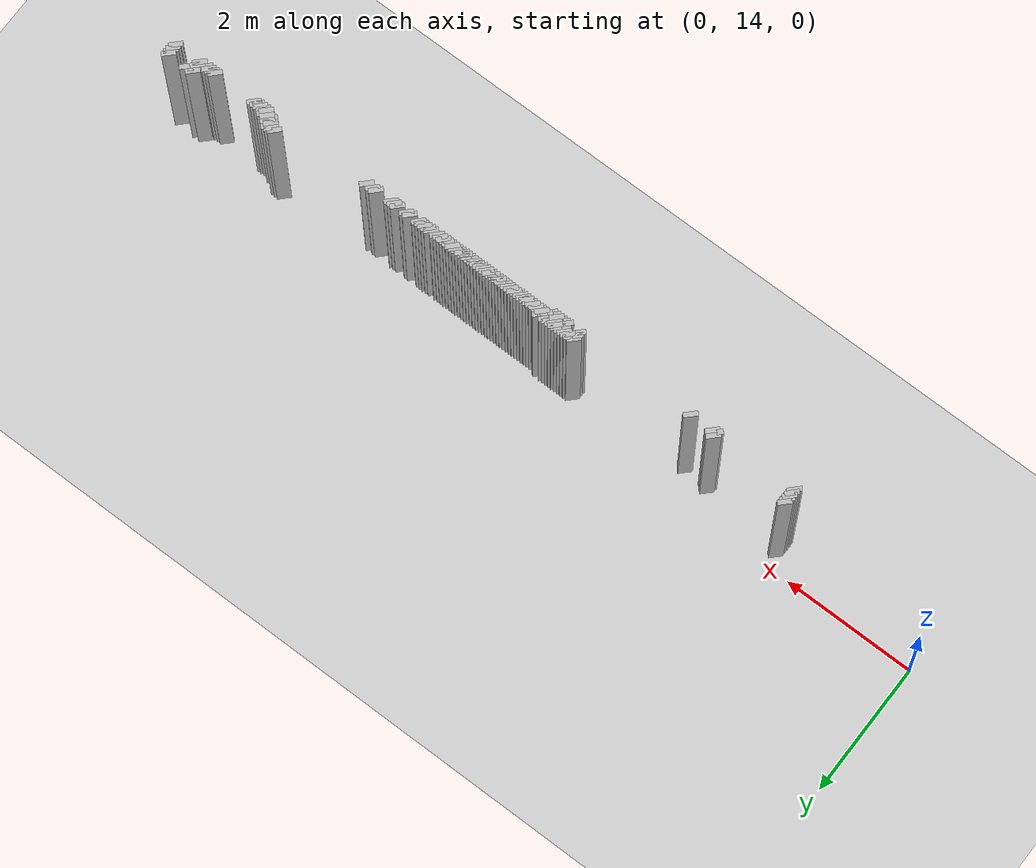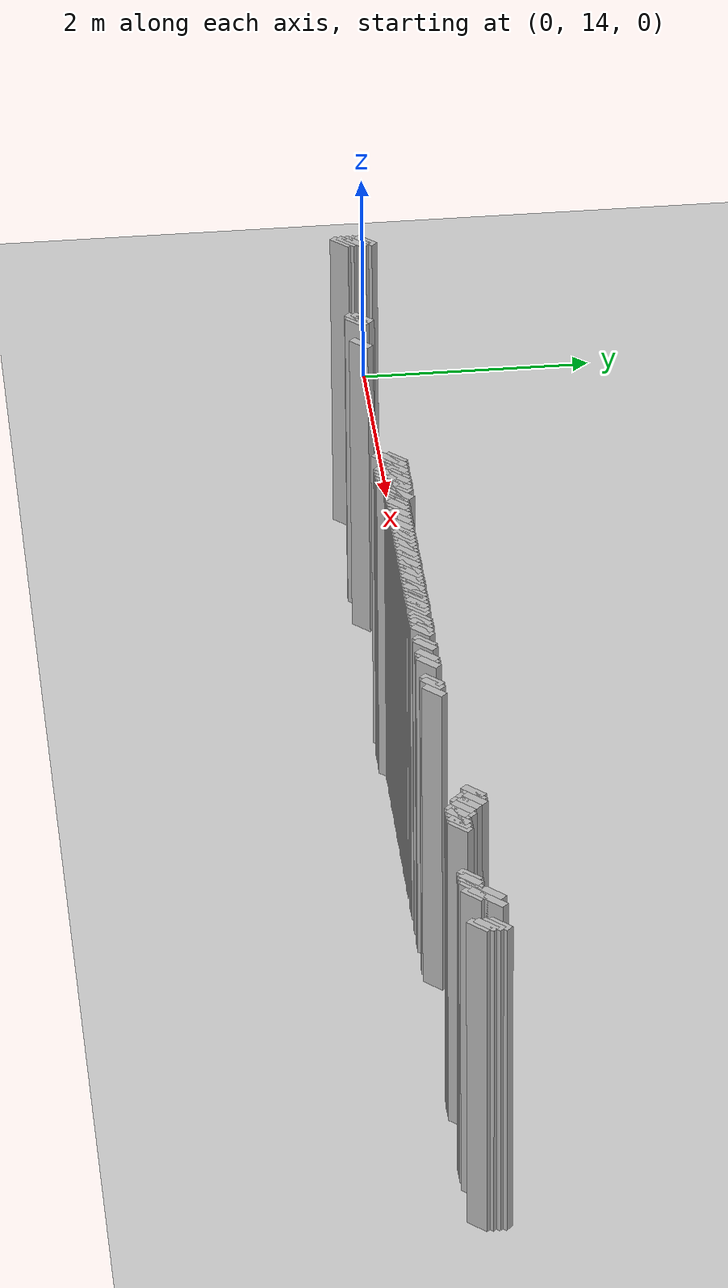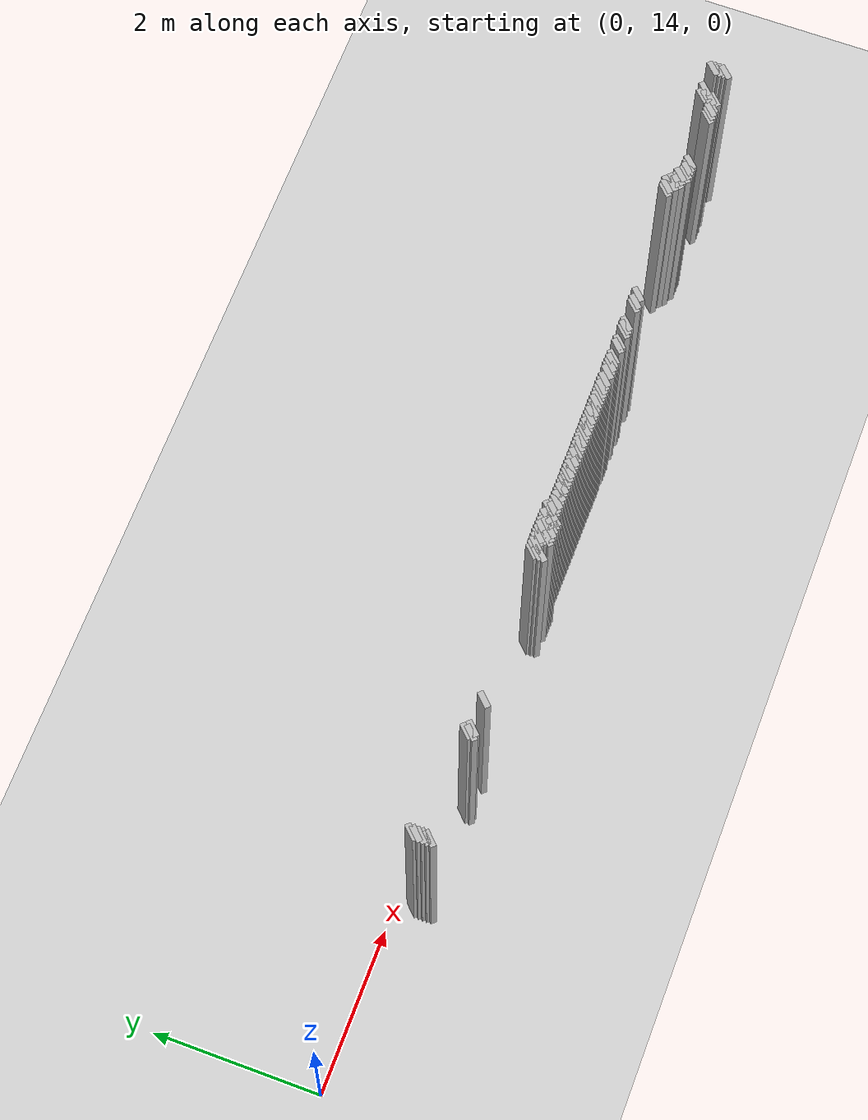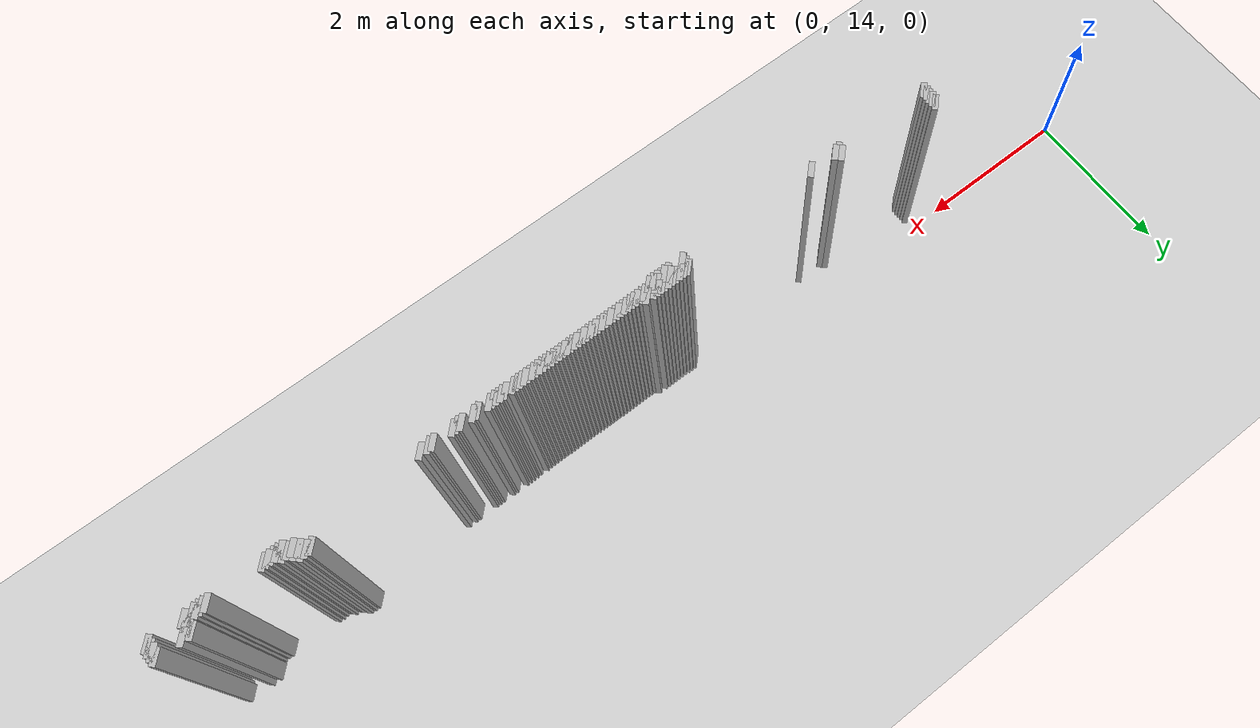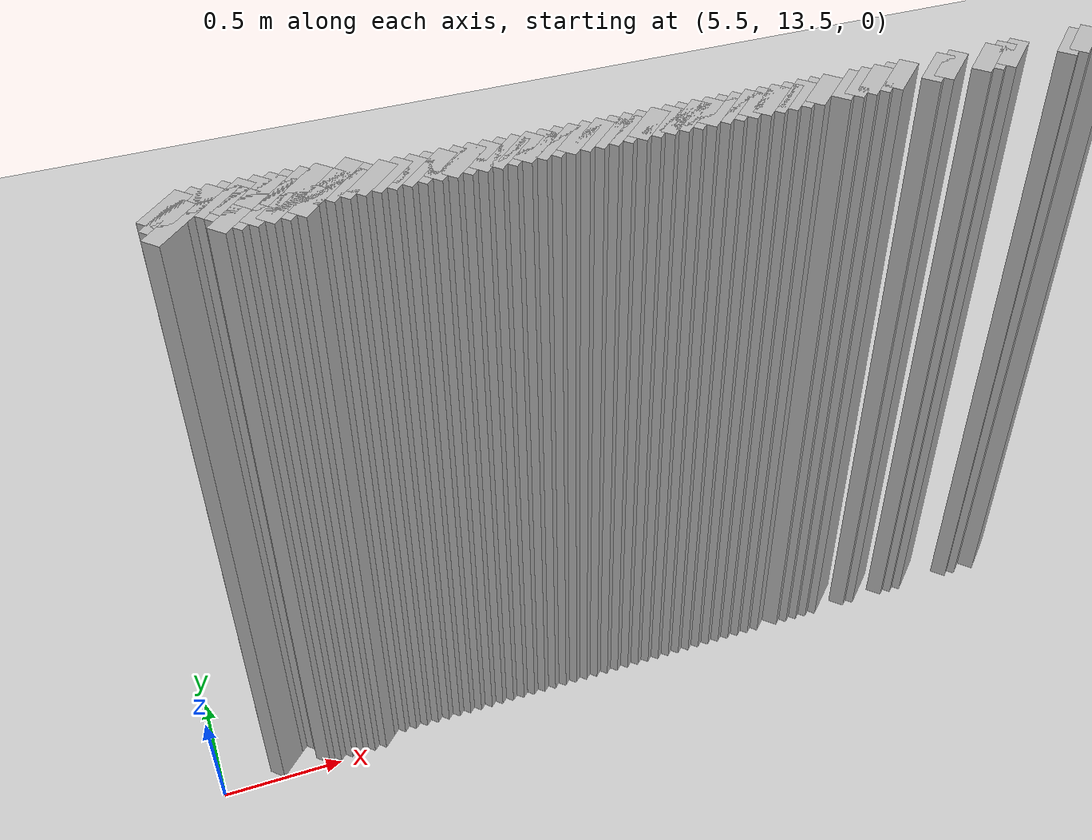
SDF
<sdf version="1.5">
 <world name="default">
  <include><uri>model://ground_plane</uri></include>
  <include><uri>model://sun</uri></include>
  <model name="grey_wall_636">
   <static>1</static>
   <link name="link">
    <pose>2.35 13.8  1.4 0 0 -0.7853981633974572</pose>
    <collision name="collision">
     <geometry><box><size>0.07071067811865513 .2  2.8</size></box></geometry>
    </collision>
    <visual name="visual">
     <cast_shadows>0</cast_shadows>
     <geometry><box><size>0.07071067811865513 .2  2.8</size></box></geometry>
    </visual>
   </link>
  </model>
  <model name="grey_wall_637">
   <static>1</static>
   <link name="link">
    <pose>10.600000000000001 13.8  1.4 0 0 -0.7853981633974483</pose>
    <collision name="collision">
     <geometry><box><size>0.07071067811865576 .2  2.8</size></box></geometry>
    </collision>
    <visual name="visual">
     <cast_shadows>0</cast_shadows>
     <geometry><box><size>0.07071067811865576 .2  2.8</size></box></geometry>
    </visual>
   </link>
  </model>
  <model name="grey_wall_638">
   <static>1</static>
   <link name="link">
    <pose>10.65 13.8  1.4 0 0 -0.7853981633974483</pose>
    <collision name="collision">
     <geometry><box><size>0.07071067811865576 .2  2.8</size></box></geometry>
    </collision>
    <visual name="visual">
     <cast_shadows>0</cast_shadows>
     <geometry><box><size>0.07071067811865576 .2  2.8</size></box></geometry>
    </visual>
   </link>
  </model>
  <model name="grey_wall_639">
   <static>1</static>
   <link name="link">
    <pose>10.700000000000001 13.8  1.4 0 0 -0.7853981633974483</pose>
    <collision name="collision">
     <geometry><box><size>0.07071067811865576 .2  2.8</size></box></geometry>
    </collision>
    <visual name="visual">
     <cast_shadows>0</cast_shadows>
     <geometry><box><size>0.07071067811865576 .2  2.8</size></box></geometry>
    </visual>
   </link>
  </model>
  <model name="grey_wall_640">
   <static>1</static>
   <link name="link">
    <pose>11.950000000000001 13.8  1.4 0 0 -0.7853981633974483</pose>
    <collision name="collision">
     <geometry><box><size>0.07071067811865576 .2  2.8</size></box></geometry>
    </collision>
    <visual name="visual">
     <cast_shadows>0</cast_shadows>
     <geometry><box><size>0.07071067811865576 .2  2.8</size></box></geometry>
    </visual>
   </link>
  </model>
  <model name="grey_wall_641">
   <static>1</static>
   <link name="link">
    <pose>12.05 13.8  1.4 0 0 -0.7853981633974483</pose>
    <collision name="collision">
     <geometry><box><size>0.07071067811865576 .2  2.8</size></box></geometry>
    </collision>
    <visual name="visual">
     <cast_shadows>0</cast_shadows>
     <geometry><box><size>0.07071067811865576 .2  2.8</size></box></geometry>
    </visual>
   </link>
  </model>
  <model name="grey_wall_642">
   <static>1</static>
   <link name="link">
    <pose>12.350000000000001 13.8  1.4 0 0 -0.7853981633974483</pose>
    <collision name="collision">
     <geometry><box><size>0.07071067811865576 .2  2.8</size></box></geometry>
    </collision>
    <visual name="visual">
     <cast_shadows>0</cast_shadows>
     <geometry><box><size>0.07071067811865576 .2  2.8</size></box></geometry>
    </visual>
   </link>
  </model>
  <model name="grey_wall_643">
   <static>1</static>
   <link name="link">
    <pose>2.35 13.75  1.4 0 0 -0.7853981633974572</pose>
    <collision name="collision">
     <geometry><box><size>0.07071067811865513 .2  2.8</size></box></geometry>
    </collision>
    <visual name="visual">
     <cast_shadows>0</cast_shadows>
     <geometry><box><size>0.07071067811865513 .2  2.8</size></box></geometry>
    </visual>
   </link>
  </model>
  <model name="grey_wall_644">
   <static>1</static>
   <link name="link">
    <pose>10.700000000000001 13.75  1.4 0 0 -0.7853981633974483</pose>
    <collision name="collision">
     <geometry><box><size>0.07071067811865576 .2  2.8</size></box></geometry>
    </collision>
    <visual name="visual">
     <cast_shadows>0</cast_shadows>
     <geometry><box><size>0.07071067811865576 .2  2.8</size></box></geometry>
    </visual>
   </link>
  </model>
  <model name="grey_wall_645">
   <static>1</static>
   <link name="link">
    <pose>10.75 13.75  1.4 0 0 -0.7853981633974483</pose>
    <collision name="collision">
     <geometry><box><size>0.07071067811865576 .2  2.8</size></box></geometry>
    </collision>
    <visual name="visual">
     <cast_shadows>0</cast_shadows>
     <geometry><box><size>0.07071067811865576 .2  2.8</size></box></geometry>
    </visual>
   </link>
  </model>
  <model name="grey_wall_646">
   <static>1</static>
   <link name="link">
    <pose>11.950000000000001 13.75  1.4 0 0 -0.7853981633974483</pose>
    <collision name="collision">
     <geometry><box><size>0.07071067811865576 .2  2.8</size></box></geometry>
    </collision>
    <visual name="visual">
     <cast_shadows>0</cast_shadows>
     <geometry><box><size>0.07071067811865576 .2  2.8</size></box></geometry>
    </visual>
   </link>
  </model>
  <model name="grey_wall_647">
   <static>1</static>
   <link name="link">
    <pose>12.350000000000001 13.75  1.4 0 0 -0.7853981633974483</pose>
    <collision name="collision">
     <geometry><box><size>0.07071067811865576 .2  2.8</size></box></geometry>
    </collision>
    <visual name="visual">
     <cast_shadows>0</cast_shadows>
     <geometry><box><size>0.07071067811865576 .2  2.8</size></box></geometry>
    </visual>
   </link>
  </model>
  <model name="grey_wall_648">
   <static>1</static>
   <link name="link">
    <pose>2.35 13.700000000000001  1.4 0 0 -0.7853981633974572</pose>
    <collision name="collision">
     <geometry><box><size>0.07071067811865513 .2  2.8</size></box></geometry>
    </collision>
    <visual name="visual">
     <cast_shadows>0</cast_shadows>
     <geometry><box><size>0.07071067811865513 .2  2.8</size></box></geometry>
    </visual>
   </link>
  </model>
  <model name="grey_wall_649">
   <static>1</static>
   <link name="link">
    <pose>5.800000000000001 13.700000000000001  1.4 0 0 -0.7853981633974483</pose>
    <collision name="collision">
     <geometry><box><size>0.07071067811865576 .2  2.8</size></box></geometry>
    </collision>
    <visual name="visual">
     <cast_shadows>0</cast_shadows>
     <geometry><box><size>0.07071067811865576 .2  2.8</size></box></geometry>
    </visual>
   </link>
  </model>
  <model name="grey_wall_650">
   <static>1</static>
   <link name="link">
    <pose>5.8500000000000005 13.700000000000001  1.4 0 0 -0.7853981633974483</pose>
    <collision name="collision">
     <geometry><box><size>0.07071067811865576 .2  2.8</size></box></geometry>
    </collision>
    <visual name="visual">
     <cast_shadows>0</cast_shadows>
     <geometry><box><size>0.07071067811865576 .2  2.8</size></box></geometry>
    </visual>
   </link>
  </model>
  <model name="grey_wall_651">
   <static>1</static>
   <link name="link">
    <pose>5.9 13.700000000000001  1.4 0 0 -0.7853981633974483</pose>
    <collision name="collision">
     <geometry><box><size>0.07071067811865576 .2  2.8</size></box></geometry>
    </collision>
    <visual name="visual">
     <cast_shadows>0</cast_shadows>
     <geometry><box><size>0.07071067811865576 .2  2.8</size></box></geometry>
    </visual>
   </link>
  </model>
  <model name="grey_wall_652">
   <static>1</static>
   <link name="link">
    <pose>5.95 13.700000000000001  1.4 0 0 -0.7853981633974483</pose>
    <collision name="collision">
     <geometry><box><size>0.07071067811865576 .2  2.8</size></box></geometry>
    </collision>
    <visual name="visual">
     <cast_shadows>0</cast_shadows>
     <geometry><box><size>0.07071067811865576 .2  2.8</size></box></geometry>
    </visual>
   </link>
  </model>
  <model name="grey_wall_653">
   <static>1</static>
   <link name="link">
    <pose>6.0 13.700000000000001  1.4 0 0 -0.7853981633974483</pose>
    <collision name="collision">
     <geometry><box><size>0.07071067811865576 .2  2.8</size></box></geometry>
    </collision>
    <visual name="visual">
     <cast_shadows>0</cast_shadows>
     <geometry><box><size>0.07071067811865576 .2  2.8</size></box></geometry>
    </visual>
   </link>
  </model>
  <model name="grey_wall_654">
   <static>1</static>
   <link name="link">
    <pose>6.050000000000001 13.700000000000001  1.4 0 0 -0.7853981633974483</pose>
    <collision name="collision">
     <geometry><box><size>0.07071067811865576 .2  2.8</size></box></geometry>
    </collision>
    <visual name="visual">
     <cast_shadows>0</cast_shadows>
     <geometry><box><size>0.07071067811865576 .2  2.8</size></box></geometry>
    </visual>
   </link>
  </model>
  <model name="grey_wall_655">
   <static>1</static>
   <link name="link">
    <pose>6.1000000000000005 13.700000000000001  1.4 0 0 -0.7853981633974483</pose>
    <collision name="collision">
     <geometry><box><size>0.07071067811865576 .2  2.8</size></box></geometry>
    </collision>
    <visual name="visual">
     <cast_shadows>0</cast_shadows>
     <geometry><box><size>0.07071067811865576 .2  2.8</size></box></geometry>
    </visual>
   </link>
  </model>
  <model name="grey_wall_656">
   <static>1</static>
   <link name="link">
    <pose>6.15 13.700000000000001  1.4 0 0 -0.7853981633974483</pose>
    <collision name="collision">
     <geometry><box><size>0.07071067811865576 .2  2.8</size></box></geometry>
    </collision>
    <visual name="visual">
     <cast_shadows>0</cast_shadows>
     <geometry><box><size>0.07071067811865576 .2  2.8</size></box></geometry>
    </visual>
   </link>
  </model>
  <model name="grey_wall_657">
   <static>1</static>
   <link name="link">
    <pose>6.2 13.700000000000001  1.4 0 0 -0.7853981633974483</pose>
    <collision name="collision">
     <geometry><box><size>0.07071067811865576 .2  2.8</size></box></geometry>
    </collision>
    <visual name="visual">
     <cast_shadows>0</cast_shadows>
     <geometry><box><size>0.07071067811865576 .2  2.8</size></box></geometry>
    </visual>
   </link>
  </model>
  <model name="grey_wall_658">
   <static>1</static>
   <link name="link">
    <pose>6.25 13.700000000000001  1.4 0 0 -0.7853981633974483</pose>
    <collision name="collision">
     <geometry><box><size>0.07071067811865576 .2  2.8</size></box></geometry>
    </collision>
    <visual name="visual">
     <cast_shadows>0</cast_shadows>
     <geometry><box><size>0.07071067811865576 .2  2.8</size></box></geometry>
    </visual>
   </link>
  </model>
  <model name="grey_wall_659">
   <static>1</static>
   <link name="link">
    <pose>6.3500000000000005 13.700000000000001  1.4 0 0 -0.7853981633974483</pose>
    <collision name="collision">
     <geometry><box><size>0.07071067811865576 .2  2.8</size></box></geometry>
    </collision>
    <visual name="visual">
     <cast_shadows>0</cast_shadows>
     <geometry><box><size>0.07071067811865576 .2  2.8</size></box></geometry>
    </visual>
   </link>
  </model>
  <model name="grey_wall_660">
   <static>1</static>
   <link name="link">
    <pose>10.75 13.700000000000001  1.4 0 0 -0.7853981633974483</pose>
    <collision name="collision">
     <geometry><box><size>0.07071067811865576 .2  2.8</size></box></geometry>
    </collision>
    <visual name="visual">
     <cast_shadows>0</cast_shadows>
     <geometry><box><size>0.07071067811865576 .2  2.8</size></box></geometry>
    </visual>
   </link>
  </model>
  <model name="grey_wall_661">
   <static>1</static>
   <link name="link">
    <pose>10.8 13.700000000000001  1.4 0 0 -0.7853981633974483</pose>
    <collision name="collision">
     <geometry><box><size>0.07071067811865576 .2  2.8</size></box></geometry>
    </collision>
    <visual name="visual">
     <cast_shadows>0</cast_shadows>
     <geometry><box><size>0.07071067811865576 .2  2.8</size></box></geometry>
    </visual>
   </link>
  </model>
  <model name="grey_wall_662">
   <static>1</static>
   <link name="link">
    <pose>10.850000000000001 13.700000000000001  1.4 0 0 -0.7853981633974483</pose>
    <collision name="collision">
     <geometry><box><size>0.07071067811865576 .2  2.8</size></box></geometry>
    </collision>
    <visual name="visual">
     <cast_shadows>0</cast_shadows>
     <geometry><box><size>0.07071067811865576 .2  2.8</size></box></geometry>
    </visual>
   </link>
  </model>
  <model name="grey_wall_663">
   <static>1</static>
   <link name="link">
    <pose>11.950000000000001 13.700000000000001  1.4 0 0 -0.7853981633974483</pose>
    <collision name="collision">
     <geometry><box><size>0.07071067811865576 .2  2.8</size></box></geometry>
    </collision>
    <visual name="visual">
     <cast_shadows>0</cast_shadows>
     <geometry><box><size>0.07071067811865576 .2  2.8</size></box></geometry>
    </visual>
   </link>
  </model>
  <model name="grey_wall_664">
   <static>1</static>
   <link name="link">
    <pose>12.350000000000001 13.700000000000001  1.4 0 0 -0.7853981633974483</pose>
    <collision name="collision">
     <geometry><box><size>0.07071067811865576 .2  2.8</size></box></geometry>
    </collision>
    <visual name="visual">
     <cast_shadows>0</cast_shadows>
     <geometry><box><size>0.07071067811865576 .2  2.8</size></box></geometry>
    </visual>
   </link>
  </model>
  <model name="grey_wall_665">
   <static>1</static>
   <link name="link">
    <pose>2.35 13.65  1.4 0 0 -0.7853981633974572</pose>
    <collision name="collision">
     <geometry><box><size>0.07071067811865513 .2  2.8</size></box></geometry>
    </collision>
    <visual name="visual">
     <cast_shadows>0</cast_shadows>
     <geometry><box><size>0.07071067811865513 .2  2.8</size></box></geometry>
    </visual>
   </link>
  </model>
  <model name="grey_wall_666">
   <static>1</static>
   <link name="link">
    <pose>3.6 13.65  1.4 0 0 -0.7853981633974572</pose>
    <collision name="collision">
     <geometry><box><size>0.07071067811865513 .2  2.8</size></box></geometry>
    </collision>
    <visual name="visual">
     <cast_shadows>0</cast_shadows>
     <geometry><box><size>0.07071067811865513 .2  2.8</size></box></geometry>
    </visual>
   </link>
  </model>
  <model name="grey_wall_667">
   <static>1</static>
   <link name="link">
    <pose>5.800000000000001 13.65  1.4 0 0 -0.7853981633974483</pose>
    <collision name="collision">
     <geometry><box><size>0.07071067811865576 .2  2.8</size></box></geometry>
    </collision>
    <visual name="visual">
     <cast_shadows>0</cast_shadows>
     <geometry><box><size>0.07071067811865576 .2  2.8</size></box></geometry>
    </visual>
   </link>
  </model>
  <model name="grey_wall_668">
   <static>1</static>
   <link name="link">
    <pose>6.0 13.65  1.4 0 0 -0.7853981633974483</pose>
    <collision name="collision">
     <geometry><box><size>0.07071067811865576 .2  2.8</size></box></geometry>
    </collision>
    <visual name="visual">
     <cast_shadows>0</cast_shadows>
     <geometry><box><size>0.07071067811865576 .2  2.8</size></box></geometry>
    </visual>
   </link>
  </model>
  <model name="grey_wall_669">
   <static>1</static>
   <link name="link">
    <pose>6.15 13.65  1.4 0 0 -0.7853981633974483</pose>
    <collision name="collision">
     <geometry><box><size>0.07071067811865576 .2  2.8</size></box></geometry>
    </collision>
    <visual name="visual">
     <cast_shadows>0</cast_shadows>
     <geometry><box><size>0.07071067811865576 .2  2.8</size></box></geometry>
    </visual>
   </link>
  </model>
  <model name="grey_wall_670">
   <static>1</static>
   <link name="link">
    <pose>6.2 13.65  1.4 0 0 -0.7853981633974483</pose>
    <collision name="collision">
     <geometry><box><size>0.07071067811865576 .2  2.8</size></box></geometry>
    </collision>
    <visual name="visual">
     <cast_shadows>0</cast_shadows>
     <geometry><box><size>0.07071067811865576 .2  2.8</size></box></geometry>
    </visual>
   </link>
  </model>
  <model name="grey_wall_671">
   <static>1</static>
   <link name="link">
    <pose>6.300000000000001 13.65  1.4 0 0 -0.7853981633974483</pose>
    <collision name="collision">
     <geometry><box><size>0.07071067811865576 .2  2.8</size></box></geometry>
    </collision>
    <visual name="visual">
     <cast_shadows>0</cast_shadows>
     <geometry><box><size>0.07071067811865576 .2  2.8</size></box></geometry>
    </visual>
   </link>
  </model>
  <model name="grey_wall_672">
   <static>1</static>
   <link name="link">
    <pose>6.3500000000000005 13.65  1.4 0 0 -0.7853981633974483</pose>
    <collision name="collision">
     <geometry><box><size>0.07071067811865576 .2  2.8</size></box></geometry>
    </collision>
    <visual name="visual">
     <cast_shadows>0</cast_shadows>
     <geometry><box><size>0.07071067811865576 .2  2.8</size></box></geometry>
    </visual>
   </link>
  </model>
  <model name="grey_wall_673">
   <static>1</static>
   <link name="link">
    <pose>6.4 13.65  1.4 0 0 -0.7853981633974483</pose>
    <collision name="collision">
     <geometry><box><size>0.07071067811865576 .2  2.8</size></box></geometry>
    </collision>
    <visual name="visual">
     <cast_shadows>0</cast_shadows>
     <geometry><box><size>0.07071067811865576 .2  2.8</size></box></geometry>
    </visual>
   </link>
  </model>
  <model name="grey_wall_674">
   <static>1</static>
   <link name="link">
    <pose>6.45 13.65  1.4 0 0 -0.7853981633974483</pose>
    <collision name="collision">
     <geometry><box><size>0.07071067811865576 .2  2.8</size></box></geometry>
    </collision>
    <visual name="visual">
     <cast_shadows>0</cast_shadows>
     <geometry><box><size>0.07071067811865576 .2  2.8</size></box></geometry>
    </visual>
   </link>
  </model>
  <model name="grey_wall_675">
   <static>1</static>
   <link name="link">
    <pose>6.5 13.65  1.4 0 0 -0.7853981633974483</pose>
    <collision name="collision">
     <geometry><box><size>0.07071067811865576 .2  2.8</size></box></geometry>
    </collision>
    <visual name="visual">
     <cast_shadows>0</cast_shadows>
     <geometry><box><size>0.07071067811865576 .2  2.8</size></box></geometry>
    </visual>
   </link>
  </model>
  <model name="grey_wall_676">
   <static>1</static>
   <link name="link">
    <pose>6.550000000000001 13.65  1.4 0 0 -0.7853981633974483</pose>
    <collision name="collision">
     <geometry><box><size>0.07071067811865576 .2  2.8</size></box></geometry>
    </collision>
    <visual name="visual">
     <cast_shadows>0</cast_shadows>
     <geometry><box><size>0.07071067811865576 .2  2.8</size></box></geometry>
    </visual>
   </link>
  </model>
  <model name="grey_wall_677">
   <static>1</static>
   <link name="link">
    <pose>6.6000000000000005 13.65  1.4 0 0 -0.7853981633974483</pose>
    <collision name="collision">
     <geometry><box><size>0.07071067811865576 .2  2.8</size></box></geometry>
    </collision>
    <visual name="visual">
     <cast_shadows>0</cast_shadows>
     <geometry><box><size>0.07071067811865576 .2  2.8</size></box></geometry>
    </visual>
   </link>
  </model>
  <model name="grey_wall_678">
   <static>1</static>
   <link name="link">
    <pose>6.65 13.65  1.4 0 0 -0.7853981633974483</pose>
    <collision name="collision">
     <geometry><box><size>0.07071067811865576 .2  2.8</size></box></geometry>
    </collision>
    <visual name="visual">
     <cast_shadows>0</cast_shadows>
     <geometry><box><size>0.07071067811865576 .2  2.8</size></box></geometry>
    </visual>
   </link>
  </model>
  <model name="grey_wall_679">
   <static>1</static>
   <link name="link">
    <pose>6.7 13.65  1.4 0 0 -0.7853981633974483</pose>
    <collision name="collision">
     <geometry><box><size>0.07071067811865576 .2  2.8</size></box></geometry>
    </collision>
    <visual name="visual">
     <cast_shadows>0</cast_shadows>
     <geometry><box><size>0.07071067811865576 .2  2.8</size></box></geometry>
    </visual>
   </link>
  </model>
  <model name="grey_wall_680">
   <static>1</static>
   <link name="link">
    <pose>6.75 13.65  1.4 0 0 -0.7853981633974483</pose>
    <collision name="collision">
     <geometry><box><size>0.07071067811865576 .2  2.8</size></box></geometry>
    </collision>
    <visual name="visual">
     <cast_shadows>0</cast_shadows>
     <geometry><box><size>0.07071067811865576 .2  2.8</size></box></geometry>
    </visual>
   </link>
  </model>
  <model name="grey_wall_681">
   <static>1</static>
   <link name="link">
    <pose>6.800000000000001 13.65  1.4 0 0 -0.7853981633974483</pose>
    <collision name="collision">
     <geometry><box><size>0.07071067811865576 .2  2.8</size></box></geometry>
    </collision>
    <visual name="visual">
     <cast_shadows>0</cast_shadows>
     <geometry><box><size>0.07071067811865576 .2  2.8</size></box></geometry>
    </visual>
   </link>
  </model>
  <model name="grey_wall_682">
   <static>1</static>
   <link name="link">
    <pose>6.8500000000000005 13.65  1.4 0 0 -0.7853981633974483</pose>
    <collision name="collision">
     <geometry><box><size>0.07071067811865576 .2  2.8</size></box></geometry>
    </collision>
    <visual name="visual">
     <cast_shadows>0</cast_shadows>
     <geometry><box><size>0.07071067811865576 .2  2.8</size></box></geometry>
    </visual>
   </link>
  </model>
  <model name="grey_wall_683">
   <static>1</static>
   <link name="link">
    <pose>6.9 13.65  1.4 0 0 -0.7853981633974483</pose>
    <collision name="collision">
     <geometry><box><size>0.07071067811865576 .2  2.8</size></box></geometry>
    </collision>
    <visual name="visual">
     <cast_shadows>0</cast_shadows>
     <geometry><box><size>0.07071067811865576 .2  2.8</size></box></geometry>
    </visual>
   </link>
  </model>
  <model name="grey_wall_684">
   <static>1</static>
   <link name="link">
    <pose>6.95 13.65  1.4 0 0 -0.7853981633974483</pose>
    <collision name="collision">
     <geometry><box><size>0.07071067811865576 .2  2.8</size></box></geometry>
    </collision>
    <visual name="visual">
     <cast_shadows>0</cast_shadows>
     <geometry><box><size>0.07071067811865576 .2  2.8</size></box></geometry>
    </visual>
   </link>
  </model>
  <model name="grey_wall_685">
   <static>1</static>
   <link name="link">
    <pose>7.0 13.65  1.4 0 0 -0.7853981633974483</pose>
    <collision name="collision">
     <geometry><box><size>0.07071067811865576 .2  2.8</size></box></geometry>
    </collision>
    <visual name="visual">
     <cast_shadows>0</cast_shadows>
     <geometry><box><size>0.07071067811865576 .2  2.8</size></box></geometry>
    </visual>
   </link>
  </model>
  <model name="grey_wall_686">
   <static>1</static>
   <link name="link">
    <pose>7.050000000000001 13.65  1.4 0 0 -0.7853981633974483</pose>
    <collision name="collision">
     <geometry><box><size>0.07071067811865576 .2  2.8</size></box></geometry>
    </collision>
    <visual name="visual">
     <cast_shadows>0</cast_shadows>
     <geometry><box><size>0.07071067811865576 .2  2.8</size></box></geometry>
    </visual>
   </link>
  </model>
  <model name="grey_wall_687">
   <static>1</static>
   <link name="link">
    <pose>7.1000000000000005 13.65  1.4 0 0 -0.7853981633974483</pose>
    <collision name="collision">
     <geometry><box><size>0.07071067811865576 .2  2.8</size></box></geometry>
    </collision>
    <visual name="visual">
     <cast_shadows>0</cast_shadows>
     <geometry><box><size>0.07071067811865576 .2  2.8</size></box></geometry>
    </visual>
   </link>
  </model>
  <model name="grey_wall_688">
   <static>1</static>
   <link name="link">
    <pose>7.15 13.65  1.4 0 0 -0.7853981633974483</pose>
    <collision name="collision">
     <geometry><box><size>0.07071067811865576 .2  2.8</size></box></geometry>
    </collision>
    <visual name="visual">
     <cast_shadows>0</cast_shadows>
     <geometry><box><size>0.07071067811865576 .2  2.8</size></box></geometry>
    </visual>
   </link>
  </model>
  <model name="grey_wall_689">
   <static>1</static>
   <link name="link">
    <pose>7.2 13.65  1.4 0 0 -0.7853981633974483</pose>
    <collision name="collision">
     <geometry><box><size>0.07071067811865576 .2  2.8</size></box></geometry>
    </collision>
    <visual name="visual">
     <cast_shadows>0</cast_shadows>
     <geometry><box><size>0.07071067811865576 .2  2.8</size></box></geometry>
    </visual>
   </link>
  </model>
  <model name="grey_wall_690">
   <static>1</static>
   <link name="link">
    <pose>7.25 13.65  1.4 0 0 -0.7853981633974483</pose>
    <collision name="collision">
     <geometry><box><size>0.07071067811865576 .2  2.8</size></box></geometry>
    </collision>
    <visual name="visual">
     <cast_shadows>0</cast_shadows>
     <geometry><box><size>0.07071067811865576 .2  2.8</size></box></geometry>
    </visual>
   </link>
  </model>
  <model name="grey_wall_691">
   <static>1</static>
   <link name="link">
    <pose>7.300000000000001 13.65  1.4 0 0 -0.7853981633974483</pose>
    <collision name="collision">
     <geometry><box><size>0.07071067811865576 .2  2.8</size></box></geometry>
    </collision>
    <visual name="visual">
     <cast_shadows>0</cast_shadows>
     <geometry><box><size>0.07071067811865576 .2  2.8</size></box></geometry>
    </visual>
   </link>
  </model>
  <model name="grey_wall_692">
   <static>1</static>
   <link name="link">
    <pose>7.3500000000000005 13.65  1.4 0 0 -0.7853981633974483</pose>
    <collision name="collision">
     <geometry><box><size>0.07071067811865576 .2  2.8</size></box></geometry>
    </collision>
    <visual name="visual">
     <cast_shadows>0</cast_shadows>
     <geometry><box><size>0.07071067811865576 .2  2.8</size></box></geometry>
    </visual>
   </link>
  </model>
  <model name="grey_wall_693">
   <static>1</static>
   <link name="link">
    <pose>7.4 13.65  1.4 0 0 -0.7853981633974483</pose>
    <collision name="collision">
     <geometry><box><size>0.07071067811865576 .2  2.8</size></box></geometry>
    </collision>
    <visual name="visual">
     <cast_shadows>0</cast_shadows>
     <geometry><box><size>0.07071067811865576 .2  2.8</size></box></geometry>
    </visual>
   </link>
  </model>
  <model name="grey_wall_694">
   <static>1</static>
   <link name="link">
    <pose>7.45 13.65  1.4 0 0 -0.7853981633974483</pose>
    <collision name="collision">
     <geometry><box><size>0.07071067811865576 .2  2.8</size></box></geometry>
    </collision>
    <visual name="visual">
     <cast_shadows>0</cast_shadows>
     <geometry><box><size>0.07071067811865576 .2  2.8</size></box></geometry>
    </visual>
   </link>
  </model>
  <model name="grey_wall_695">
   <static>1</static>
   <link name="link">
    <pose>7.5 13.65  1.4 0 0 -0.7853981633974483</pose>
    <collision name="collision">
     <geometry><box><size>0.07071067811865576 .2  2.8</size></box></geometry>
    </collision>
    <visual name="visual">
     <cast_shadows>0</cast_shadows>
     <geometry><box><size>0.07071067811865576 .2  2.8</size></box></geometry>
    </visual>
   </link>
  </model>
  <model name="grey_wall_696">
   <static>1</static>
   <link name="link">
    <pose>7.550000000000001 13.65  1.4 0 0 -0.7853981633974483</pose>
    <collision name="collision">
     <geometry><box><size>0.07071067811865576 .2  2.8</size></box></geometry>
    </collision>
    <visual name="visual">
     <cast_shadows>0</cast_shadows>
     <geometry><box><size>0.07071067811865576 .2  2.8</size></box></geometry>
    </visual>
   </link>
  </model>
  <model name="grey_wall_697">
   <static>1</static>
   <link name="link">
    <pose>7.6000000000000005 13.65  1.4 0 0 -0.7853981633974483</pose>
    <collision name="collision">
     <geometry><box><size>0.07071067811865576 .2  2.8</size></box></geometry>
    </collision>
    <visual name="visual">
     <cast_shadows>0</cast_shadows>
     <geometry><box><size>0.07071067811865576 .2  2.8</size></box></geometry>
    </visual>
   </link>
  </model>
  <model name="grey_wall_698">
   <static>1</static>
   <link name="link">
    <pose>7.65 13.65  1.4 0 0 -0.7853981633974483</pose>
    <collision name="collision">
     <geometry><box><size>0.07071067811865576 .2  2.8</size></box></geometry>
    </collision>
    <visual name="visual">
     <cast_shadows>0</cast_shadows>
     <geometry><box><size>0.07071067811865576 .2  2.8</size></box></geometry>
    </visual>
   </link>
  </model>
  <model name="grey_wall_699">
   <static>1</static>
   <link name="link">
    <pose>7.7 13.65  1.4 0 0 -0.7853981633974483</pose>
    <collision name="collision">
     <geometry><box><size>0.07071067811865576 .2  2.8</size></box></geometry>
    </collision>
    <visual name="visual">
     <cast_shadows>0</cast_shadows>
     <geometry><box><size>0.07071067811865576 .2  2.8</size></box></geometry>
    </visual>
   </link>
  </model>
  <model name="grey_wall_700">
   <static>1</static>
   <link name="link">
    <pose>7.75 13.65  1.4 0 0 -0.7853981633974483</pose>
    <collision name="collision">
     <geometry><box><size>0.07071067811865576 .2  2.8</size></box></geometry>
    </collision>
    <visual name="visual">
     <cast_shadows>0</cast_shadows>
     <geometry><box><size>0.07071067811865576 .2  2.8</size></box></geometry>
    </visual>
   </link>
  </model>
  <model name="grey_wall_701">
   <static>1</static>
   <link name="link">
    <pose>7.800000000000001 13.65  1.4 0 0 -0.7853981633974483</pose>
    <collision name="collision">
     <geometry><box><size>0.07071067811865576 .2  2.8</size></box></geometry>
    </collision>
    <visual name="visual">
     <cast_shadows>0</cast_shadows>
     <geometry><box><size>0.07071067811865576 .2  2.8</size></box></geometry>
    </visual>
   </link>
  </model>
  <model name="grey_wall_702">
   <static>1</static>
   <link name="link">
    <pose>7.8500000000000005 13.65  1.4 0 0 -0.7853981633974483</pose>
    <collision name="collision">
     <geometry><box><size>0.07071067811865576 .2  2.8</size></box></geometry>
    </collision>
    <visual name="visual">
     <cast_shadows>0</cast_shadows>
     <geometry><box><size>0.07071067811865576 .2  2.8</size></box></geometry>
    </visual>
   </link>
  </model>
  <model name="grey_wall_703">
   <static>1</static>
   <link name="link">
    <pose>7.9 13.65  1.4 0 0 -0.7853981633974483</pose>
    <collision name="collision">
     <geometry><box><size>0.07071067811865576 .2  2.8</size></box></geometry>
    </collision>
    <visual name="visual">
     <cast_shadows>0</cast_shadows>
     <geometry><box><size>0.07071067811865576 .2  2.8</size></box></geometry>
    </visual>
   </link>
  </model>
  <model name="grey_wall_704">
   <static>1</static>
   <link name="link">
    <pose>7.95 13.65  1.4 0 0 -0.7853981633974483</pose>
    <collision name="collision">
     <geometry><box><size>0.07071067811865576 .2  2.8</size></box></geometry>
    </collision>
    <visual name="visual">
     <cast_shadows>0</cast_shadows>
     <geometry><box><size>0.07071067811865576 .2  2.8</size></box></geometry>
    </visual>
   </link>
  </model>
  <model name="grey_wall_705">
   <static>1</static>
   <link name="link">
    <pose>8.0 13.65  1.4 0 0 -0.7853981633974483</pose>
    <collision name="collision">
     <geometry><box><size>0.07071067811865576 .2  2.8</size></box></geometry>
    </collision>
    <visual name="visual">
     <cast_shadows>0</cast_shadows>
     <geometry><box><size>0.07071067811865576 .2  2.8</size></box></geometry>
    </visual>
   </link>
  </model>
  <model name="grey_wall_706">
   <static>1</static>
   <link name="link">
    <pose>8.05 13.65  1.4 0 0 -0.7853981633974483</pose>
    <collision name="collision">
     <geometry><box><size>0.07071067811865576 .2  2.8</size></box></geometry>
    </collision>
    <visual name="visual">
     <cast_shadows>0</cast_shadows>
     <geometry><box><size>0.07071067811865576 .2  2.8</size></box></geometry>
    </visual>
   </link>
  </model>
  <model name="grey_wall_707">
   <static>1</static>
   <link name="link">
    <pose>8.15 13.65  1.4 0 0 -0.7853981633974483</pose>
    <collision name="collision">
     <geometry><box><size>0.07071067811865576 .2  2.8</size></box></geometry>
    </collision>
    <visual name="visual">
     <cast_shadows>0</cast_shadows>
     <geometry><box><size>0.07071067811865576 .2  2.8</size></box></geometry>
    </visual>
   </link>
  </model>
  <model name="grey_wall_708">
   <static>1</static>
   <link name="link">
    <pose>8.200000000000001 13.65  1.4 0 0 -0.7853981633974483</pose>
    <collision name="collision">
     <geometry><box><size>0.07071067811865576 .2  2.8</size></box></geometry>
    </collision>
    <visual name="visual">
     <cast_shadows>0</cast_shadows>
     <geometry><box><size>0.07071067811865576 .2  2.8</size></box></geometry>
    </visual>
   </link>
  </model>
  <model name="grey_wall_709">
   <static>1</static>
   <link name="link">
    <pose>8.25 13.65  1.4 0 0 -0.7853981633974483</pose>
    <collision name="collision">
     <geometry><box><size>0.07071067811865576 .2  2.8</size></box></geometry>
    </collision>
    <visual name="visual">
     <cast_shadows>0</cast_shadows>
     <geometry><box><size>0.07071067811865576 .2  2.8</size></box></geometry>
    </visual>
   </link>
  </model>
  <model name="grey_wall_710">
   <static>1</static>
   <link name="link">
    <pose>8.3 13.65  1.4 0 0 -0.7853981633974483</pose>
    <collision name="collision">
     <geometry><box><size>0.07071067811865576 .2  2.8</size></box></geometry>
    </collision>
    <visual name="visual">
     <cast_shadows>0</cast_shadows>
     <geometry><box><size>0.07071067811865576 .2  2.8</size></box></geometry>
    </visual>
   </link>
  </model>
  <model name="grey_wall_711">
   <static>1</static>
   <link name="link">
    <pose>8.35 13.65  1.4 0 0 -0.7853981633974483</pose>
    <collision name="collision">
     <geometry><box><size>0.07071067811865576 .2  2.8</size></box></geometry>
    </collision>
    <visual name="visual">
     <cast_shadows>0</cast_shadows>
     <geometry><box><size>0.07071067811865576 .2  2.8</size></box></geometry>
    </visual>
   </link>
  </model>
  <model name="grey_wall_712">
   <static>1</static>
   <link name="link">
    <pose>8.5 13.65  1.4 0 0 -0.7853981633974483</pose>
    <collision name="collision">
     <geometry><box><size>0.07071067811865576 .2  2.8</size></box></geometry>
    </collision>
    <visual name="visual">
     <cast_shadows>0</cast_shadows>
     <geometry><box><size>0.07071067811865576 .2  2.8</size></box></geometry>
    </visual>
   </link>
  </model>
  <model name="grey_wall_713">
   <static>1</static>
   <link name="link">
    <pose>8.55 13.65  1.4 0 0 -0.7853981633974483</pose>
    <collision name="collision">
     <geometry><box><size>0.07071067811865576 .2  2.8</size></box></geometry>
    </collision>
    <visual name="visual">
     <cast_shadows>0</cast_shadows>
     <geometry><box><size>0.07071067811865576 .2  2.8</size></box></geometry>
    </visual>
   </link>
  </model>
  <model name="grey_wall_714">
   <static>1</static>
   <link name="link">
    <pose>8.700000000000001 13.65  1.4 0 0 -0.7853981633974483</pose>
    <collision name="collision">
     <geometry><box><size>0.07071067811865576 .2  2.8</size></box></geometry>
    </collision>
    <visual name="visual">
     <cast_shadows>0</cast_shadows>
     <geometry><box><size>0.07071067811865576 .2  2.8</size></box></geometry>
    </visual>
   </link>
  </model>
  <model name="grey_wall_715">
   <static>1</static>
   <link name="link">
    <pose>8.75 13.65  1.4 0 0 -0.7853981633974483</pose>
    <collision name="collision">
     <geometry><box><size>0.07071067811865576 .2  2.8</size></box></geometry>
    </collision>
    <visual name="visual">
     <cast_shadows>0</cast_shadows>
     <geometry><box><size>0.07071067811865576 .2  2.8</size></box></geometry>
    </visual>
   </link>
  </model>
  <model name="grey_wall_716">
   <static>1</static>
   <link name="link">
    <pose>8.8 13.65  1.4 0 0 -0.7853981633974483</pose>
    <collision name="collision">
     <geometry><box><size>0.07071067811865576 .2  2.8</size></box></geometry>
    </collision>
    <visual name="visual">
     <cast_shadows>0</cast_shadows>
     <geometry><box><size>0.07071067811865576 .2  2.8</size></box></geometry>
    </visual>
   </link>
  </model>
  <model name="grey_wall_717">
   <static>1</static>
   <link name="link">
    <pose>9.05 13.65  1.4 0 0 -0.7853981633974483</pose>
    <collision name="collision">
     <geometry><box><size>0.07071067811865576 .2  2.8</size></box></geometry>
    </collision>
    <visual name="visual">
     <cast_shadows>0</cast_shadows>
     <geometry><box><size>0.07071067811865576 .2  2.8</size></box></geometry>
    </visual>
   </link>
  </model>
  <model name="grey_wall_718">
   <static>1</static>
   <link name="link">
    <pose>9.1 13.65  1.4 0 0 -0.7853981633974483</pose>
    <collision name="collision">
     <geometry><box><size>0.07071067811865576 .2  2.8</size></box></geometry>
    </collision>
    <visual name="visual">
     <cast_shadows>0</cast_shadows>
     <geometry><box><size>0.07071067811865576 .2  2.8</size></box></geometry>
    </visual>
   </link>
  </model>
  <model name="grey_wall_719">
   <static>1</static>
   <link name="link">
    <pose>9.200000000000001 13.65  1.4 0 0 -0.7853981633974483</pose>
    <collision name="collision">
     <geometry><box><size>0.07071067811865576 .2  2.8</size></box></geometry>
    </collision>
    <visual name="visual">
     <cast_shadows>0</cast_shadows>
     <geometry><box><size>0.07071067811865576 .2  2.8</size></box></geometry>
    </visual>
   </link>
  </model>
  <model name="grey_wall_720">
   <static>1</static>
   <link name="link">
    <pose>10.850000000000001 13.65  1.4 0 0 -0.7853981633974483</pose>
    <collision name="collision">
     <geometry><box><size>0.07071067811865576 .2  2.8</size></box></geometry>
    </collision>
    <visual name="visual">
     <cast_shadows>0</cast_shadows>
     <geometry><box><size>0.07071067811865576 .2  2.8</size></box></geometry>
    </visual>
   </link>
  </model>
  <model name="grey_wall_721">
   <static>1</static>
   <link name="link">
    <pose>10.9 13.65  1.4 0 0 -0.7853981633974483</pose>
    <collision name="collision">
     <geometry><box><size>0.07071067811865576 .2  2.8</size></box></geometry>
    </collision>
    <visual name="visual">
     <cast_shadows>0</cast_shadows>
     <geometry><box><size>0.07071067811865576 .2  2.8</size></box></geometry>
    </visual>
   </link>
  </model>
  <model name="grey_wall_722">
   <static>1</static>
   <link name="link">
    <pose>10.950000000000001 13.65  1.4 0 0 -0.7853981633974483</pose>
    <collision name="collision">
     <geometry><box><size>0.07071067811865576 .2  2.8</size></box></geometry>
    </collision>
    <visual name="visual">
     <cast_shadows>0</cast_shadows>
     <geometry><box><size>0.07071067811865576 .2  2.8</size></box></geometry>
    </visual>
   </link>
  </model>
  <model name="grey_wall_723">
   <static>1</static>
   <link name="link">
    <pose>11.0 13.65  1.4 0 0 -0.7853981633974483</pose>
    <collision name="collision">
     <geometry><box><size>0.07071067811865576 .2  2.8</size></box></geometry>
    </collision>
    <visual name="visual">
     <cast_shadows>0</cast_shadows>
     <geometry><box><size>0.07071067811865576 .2  2.8</size></box></geometry>
    </visual>
   </link>
  </model>
  <model name="grey_wall_724">
   <static>1</static>
   <link name="link">
    <pose>11.05 13.65  1.4 0 0 -0.7853981633974483</pose>
    <collision name="collision">
     <geometry><box><size>0.07071067811865576 .2  2.8</size></box></geometry>
    </collision>
    <visual name="visual">
     <cast_shadows>0</cast_shadows>
     <geometry><box><size>0.07071067811865576 .2  2.8</size></box></geometry>
    </visual>
   </link>
  </model>
  <model name="grey_wall_725">
   <static>1</static>
   <link name="link">
    <pose>11.700000000000001 13.65  1.4 0 0 -0.7853981633974483</pose>
    <collision name="collision">
     <geometry><box><size>0.07071067811865576 .2  2.8</size></box></geometry>
    </collision>
    <visual name="visual">
     <cast_shadows>0</cast_shadows>
     <geometry><box><size>0.07071067811865576 .2  2.8</size></box></geometry>
    </visual>
   </link>
  </model>
  <model name="grey_wall_726">
   <static>1</static>
   <link name="link">
    <pose>11.75 13.65  1.4 0 0 -0.7853981633974483</pose>
    <collision name="collision">
     <geometry><box><size>0.07071067811865576 .2  2.8</size></box></geometry>
    </collision>
    <visual name="visual">
     <cast_shadows>0</cast_shadows>
     <geometry><box><size>0.07071067811865576 .2  2.8</size></box></geometry>
    </visual>
   </link>
  </model>
  <model name="grey_wall_727">
   <static>1</static>
   <link name="link">
    <pose>11.8 13.65  1.4 0 0 -0.7853981633974483</pose>
    <collision name="collision">
     <geometry><box><size>0.07071067811865576 .2  2.8</size></box></geometry>
    </collision>
    <visual name="visual">
     <cast_shadows>0</cast_shadows>
     <geometry><box><size>0.07071067811865576 .2  2.8</size></box></geometry>
    </visual>
   </link>
  </model>
  <model name="grey_wall_728">
   <static>1</static>
   <link name="link">
    <pose>11.850000000000001 13.65  1.4 0 0 -0.7853981633974483</pose>
    <collision name="collision">
     <geometry><box><size>0.07071067811865576 .2  2.8</size></box></geometry>
    </collision>
    <visual name="visual">
     <cast_shadows>0</cast_shadows>
     <geometry><box><size>0.07071067811865576 .2  2.8</size></box></geometry>
    </visual>
   </link>
  </model>
  <model name="grey_wall_729">
   <static>1</static>
   <link name="link">
    <pose>11.950000000000001 13.65  1.4 0 0 -0.7853981633974483</pose>
    <collision name="collision">
     <geometry><box><size>0.07071067811865576 .2  2.8</size></box></geometry>
    </collision>
    <visual name="visual">
     <cast_shadows>0</cast_shadows>
     <geometry><box><size>0.07071067811865576 .2  2.8</size></box></geometry>
    </visual>
   </link>
  </model>
  <model name="grey_wall_730">
   <static>1</static>
   <link name="link">
    <pose>12.350000000000001 13.65  1.4 0 0 -0.7853981633974483</pose>
    <collision name="collision">
     <geometry><box><size>0.07071067811865576 .2  2.8</size></box></geometry>
    </collision>
    <visual name="visual">
     <cast_shadows>0</cast_shadows>
     <geometry><box><size>0.07071067811865576 .2  2.8</size></box></geometry>
    </visual>
   </link>
  </model>
  <model name="grey_wall_731">
   <static>1</static>
   <link name="link">
    <pose>2.35 13.600000000000001  1.4 0 0 -0.7853981633974572</pose>
    <collision name="collision">
     <geometry><box><size>0.07071067811865513 .2  2.8</size></box></geometry>
    </collision>
    <visual name="visual">
     <cast_shadows>0</cast_shadows>
     <geometry><box><size>0.07071067811865513 .2  2.8</size></box></geometry>
    </visual>
   </link>
  </model>
  <model name="grey_wall_732">
   <static>1</static>
   <link name="link">
    <pose>3.6 13.600000000000001  1.4 0 0 -0.7853981633974572</pose>
    <collision name="collision">
     <geometry><box><size>0.07071067811865513 .2  2.8</size></box></geometry>
    </collision>
    <visual name="visual">
     <cast_shadows>0</cast_shadows>
     <geometry><box><size>0.07071067811865513 .2  2.8</size></box></geometry>
    </visual>
   </link>
  </model>
  <model name="grey_wall_733">
   <static>1</static>
   <link name="link">
    <pose>3.6500000000000004 13.600000000000001  1.4 0 0 -0.7853981633974572</pose>
    <collision name="collision">
     <geometry><box><size>0.07071067811865513 .2  2.8</size></box></geometry>
    </collision>
    <visual name="visual">
     <cast_shadows>0</cast_shadows>
     <geometry><box><size>0.07071067811865513 .2  2.8</size></box></geometry>
    </visual>
   </link>
  </model>
  <model name="grey_wall_734">
   <static>1</static>
   <link name="link">
    <pose>4.0 13.600000000000001  1.4 0 0 -0.7853981633974527</pose>
    <collision name="collision">
     <geometry><box><size>0.07071067811865545 .2  2.8</size></box></geometry>
    </collision>
    <visual name="visual">
     <cast_shadows>0</cast_shadows>
     <geometry><box><size>0.07071067811865545 .2  2.8</size></box></geometry>
    </visual>
   </link>
  </model>
  <model name="grey_wall_735">
   <static>1</static>
   <link name="link">
    <pose>5.800000000000001 13.600000000000001  1.4 0 0 -0.7853981633974483</pose>
    <collision name="collision">
     <geometry><box><size>0.07071067811865576 .2  2.8</size></box></geometry>
    </collision>
    <visual name="visual">
     <cast_shadows>0</cast_shadows>
     <geometry><box><size>0.07071067811865576 .2  2.8</size></box></geometry>
    </visual>
   </link>
  </model>
  <model name="grey_wall_736">
   <static>1</static>
   <link name="link">
    <pose>6.0 13.600000000000001  1.4 0 0 -0.7853981633974483</pose>
    <collision name="collision">
     <geometry><box><size>0.07071067811865576 .2  2.8</size></box></geometry>
    </collision>
    <visual name="visual">
     <cast_shadows>0</cast_shadows>
     <geometry><box><size>0.07071067811865576 .2  2.8</size></box></geometry>
    </visual>
   </link>
  </model>
  <model name="grey_wall_737">
   <static>1</static>
   <link name="link">
    <pose>6.050000000000001 13.600000000000001  1.4 0 0 -0.7853981633974483</pose>
    <collision name="collision">
     <geometry><box><size>0.07071067811865576 .2  2.8</size></box></geometry>
    </collision>
    <visual name="visual">
     <cast_shadows>0</cast_shadows>
     <geometry><box><size>0.07071067811865576 .2  2.8</size></box></geometry>
    </visual>
   </link>
  </model>
  <model name="grey_wall_738">
   <static>1</static>
   <link name="link">
    <pose>6.1000000000000005 13.600000000000001  1.4 0 0 -0.7853981633974483</pose>
    <collision name="collision">
     <geometry><box><size>0.07071067811865576 .2  2.8</size></box></geometry>
    </collision>
    <visual name="visual">
     <cast_shadows>0</cast_shadows>
     <geometry><box><size>0.07071067811865576 .2  2.8</size></box></geometry>
    </visual>
   </link>
  </model>
  <model name="grey_wall_739">
   <static>1</static>
   <link name="link">
    <pose>6.15 13.600000000000001  1.4 0 0 -0.7853981633974483</pose>
    <collision name="collision">
     <geometry><box><size>0.07071067811865576 .2  2.8</size></box></geometry>
    </collision>
    <visual name="visual">
     <cast_shadows>0</cast_shadows>
     <geometry><box><size>0.07071067811865576 .2  2.8</size></box></geometry>
    </visual>
   </link>
  </model>
  <model name="grey_wall_740">
   <static>1</static>
   <link name="link">
    <pose>6.2 13.600000000000001  1.4 0 0 -0.7853981633974483</pose>
    <collision name="collision">
     <geometry><box><size>0.07071067811865576 .2  2.8</size></box></geometry>
    </collision>
    <visual name="visual">
     <cast_shadows>0</cast_shadows>
     <geometry><box><size>0.07071067811865576 .2  2.8</size></box></geometry>
    </visual>
   </link>
  </model>
  <model name="grey_wall_741">
   <static>1</static>
   <link name="link">
    <pose>6.25 13.600000000000001  1.4 0 0 -0.7853981633974483</pose>
    <collision name="collision">
     <geometry><box><size>0.07071067811865576 .2  2.8</size></box></geometry>
    </collision>
    <visual name="visual">
     <cast_shadows>0</cast_shadows>
     <geometry><box><size>0.07071067811865576 .2  2.8</size></box></geometry>
    </visual>
   </link>
  </model>
 </world>
</sdf>
